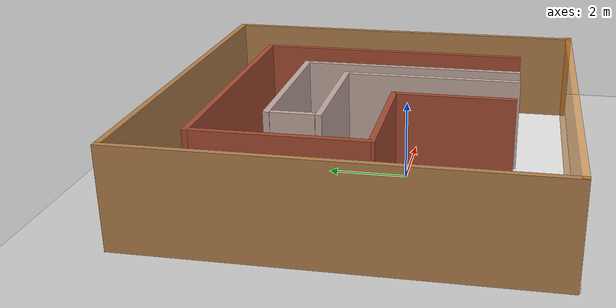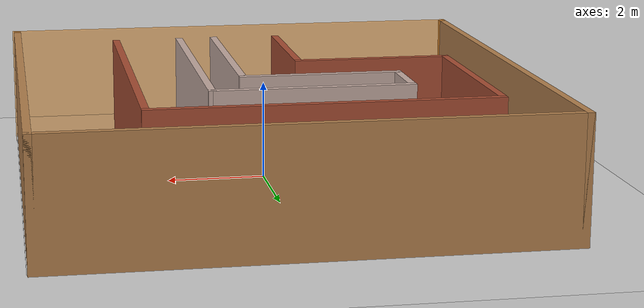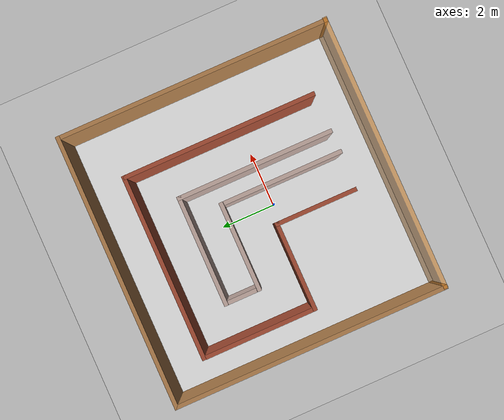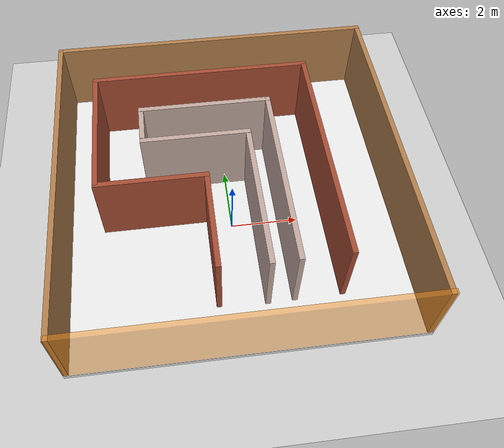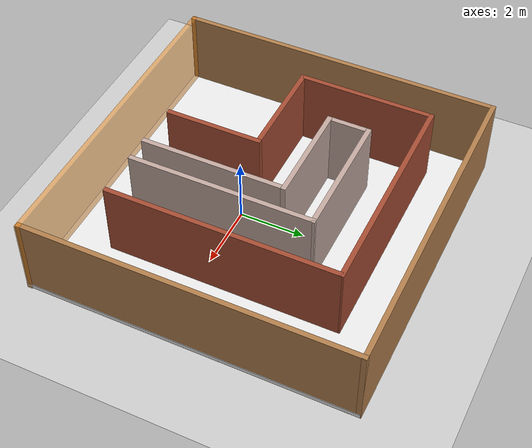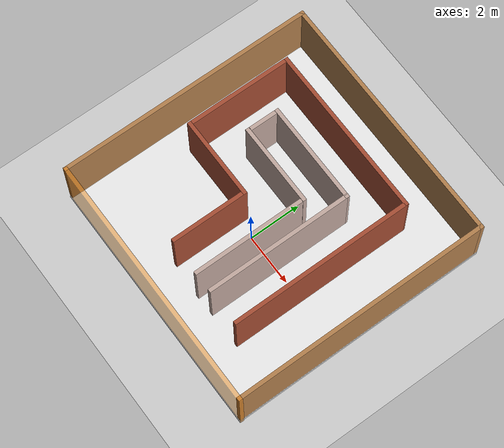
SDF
<sdf version="1.7">
 <world name="default">
  <light name="sun" type="directional">
   <pose>0 0 10 0 -0 0</pose>
   <diffuse>0.8 0.8 0.8 1</diffuse>
   <specular>0.2 0.2 0.2 1</specular>
   <attenuation>
    <range>1000</range>
    <constant>0.9</constant>
    <linear>0.01</linear>
    <quadratic>0.001</quadratic>
   </attenuation>
   <direction>-0.5 0.1 -0.9</direction>
   <spot><inner_angle>0</inner_angle><outer_angle>0</outer_angle><falloff>0</falloff></spot>
  </light>
  <model name="ground_plane">
   <static>1</static>
   <link name="link">
    <collision name="collision">
     <geometry><plane><normal>0 0 1</normal><size>100 100</size></plane></geometry>
     <surface>
      <contact><collide_bitmask>65535</collide_bitmask></contact>
      <friction><ode><mu>100</mu><mu2>50</mu2></ode></friction>
     </surface>
    </collision>
    <visual name="visual">
     <cast_shadows>0</cast_shadows>
     <geometry><plane><normal>0 0 1</normal><size>100 100</size></plane></geometry>
     <material>
      <script><uri>file://media/materials/scripts/gazebo.material</uri><name>Gazebo/Grey</name></script>
     </material>
    </visual>
   </link>
  </model>
  <gravity>0 0 -9.8</gravity>
  <magnetic_field>6e-06 2.3e-05 -4.2e-05</magnetic_field>
  <atmosphere type="adiabatic"/>
  <physics type="ode">
   <max_step_size>0.001</max_step_size>
   <real_time_factor>1</real_time_factor>
   <real_time_update_rate>1000</real_time_update_rate>
  </physics>
  <scene><ambient>0.4 0.4 0.4 1</ambient><background>0.7 0.7 0.7 1</background><shadows>1</shadows></scene>
  <spherical_coordinates>
   <surface_model>EARTH_WGS84</surface_model>
   <latitude_deg>0</latitude_deg>
   <longitude_deg>0</longitude_deg>
   <elevation>0</elevation>
   <heading_deg>0</heading_deg>
  </spherical_coordinates>
  <model name="delimiter_transparent">
   <model name="delimiter">
    <link name="Wall_11">
     <pose>0 4.925 0 0 -0 0</pose>
     <visual name="Wall_11_Visual">
      <pose>0 0 1.25 0 -0 0</pose>
      <geometry><box><size>10 0.15 2.5</size></box></geometry>
      <material>
       <script><uri>file://media/materials/scripts/gazebo.material</uri><name>Gazebo/Wood</name></script>
       <ambient>1 1 1 1</ambient>
       <shader type="pixel"/>
       <emissive>0 0 0 1</emissive>
      </material>
      <meta><layer>0</layer></meta>
     </visual>
     <collision name="Wall_11_Collision">
      <pose>0 0 1.25 0 -0 0</pose>
      <geometry><box><size>10 0.15 2.5</size></box></geometry>
      <surface>
       <friction>
        <ode><mu>1</mu><mu2>1</mu2><fdir1>0 0 0</fdir1><slip1>0</slip1><slip2>0</slip2></ode>
        <torsional>
         <coefficient>1</coefficient>
         <patch_radius>0</patch_radius>
         <surface_radius>0</surface_radius>
         <use_patch_radius>1</use_patch_radius>
         <ode><slip>0</slip></ode>
        </torsional>
       </friction>
       <bounce><restitution_coefficient>0</restitution_coefficient><threshold>1e+06</threshold></bounce>
       <contact>
        <collide_without_contact>0</collide_without_contact>
        <collide_without_contact_bitmask>1</collide_without_contact_bitmask>
        <collide_bitmask>1</collide_bitmask>
        <ode>
         <soft_cfm>0</soft_cfm>
         <soft_erp>0.2</soft_erp>
         <kp>1e+13</kp>
         <kd>1</kd>
         <max_vel>0.01</max_vel>
         <min_depth>0</min_depth>
        </ode>
        <bullet>
         <split_impulse>1</split_impulse>
         <split_impulse_penetration_threshold>-0.01</split_impulse_penetration_threshold>
         <soft_cfm>0</soft_cfm>
         <soft_erp>0.2</soft_erp>
         <kp>1e+13</kp>
         <kd>1</kd>
        </bullet>
       </contact>
      </surface>
     </collision>
    </link>
    <link name="Wall_6">
     <pose>-4.925 0 0 0 -0 1.5708</pose>
     <visual name="Wall_6_Visual">
      <pose>0 0 1.25 0 -0 0</pose>
      <geometry><box><size>10 0.15 2.5</size></box></geometry>
      <material>
       <script><uri>file://media/materials/scripts/gazebo.material</uri><name>Gazebo/Wood</name></script>
       <ambient>1 1 1 1</ambient>
       <shader type="pixel"/>
       <emissive>0 0 0 1</emissive>
      </material>
      <meta><layer>0</layer></meta>
     </visual>
     <collision name="Wall_6_Collision">
      <pose>0 0 1.25 0 -0 0</pose>
      <geometry><box><size>10 0.15 2.5</size></box></geometry>
      <surface>
       <friction>
        <ode><mu>1</mu><mu2>1</mu2><fdir1>0 0 0</fdir1><slip1>0</slip1><slip2>0</slip2></ode>
        <torsional>
         <coefficient>1</coefficient>
         <patch_radius>0</patch_radius>
         <surface_radius>0</surface_radius>
         <use_patch_radius>1</use_patch_radius>
         <ode><slip>0</slip></ode>
        </torsional>
       </friction>
       <bounce><restitution_coefficient>0</restitution_coefficient><threshold>1e+06</threshold></bounce>
       <contact>
        <collide_without_contact>0</collide_without_contact>
        <collide_without_contact_bitmask>1</collide_without_contact_bitmask>
        <collide_bitmask>1</collide_bitmask>
        <ode>
         <soft_cfm>0</soft_cfm>
         <soft_erp>0.2</soft_erp>
         <kp>1e+13</kp>
         <kd>1</kd>
         <max_vel>0.01</max_vel>
         <min_depth>0</min_depth>
        </ode>
        <bullet>
         <split_impulse>1</split_impulse>
         <split_impulse_penetration_threshold>-0.01</split_impulse_penetration_threshold>
         <soft_cfm>0</soft_cfm>
         <soft_erp>0.2</soft_erp>
         <kp>1e+13</kp>
         <kd>1</kd>
        </bullet>
       </contact>
      </surface>
     </collision>
    </link>
    <link name="Wall_9">
     <pose>4.925 0 0 0 -0 1.5708</pose>
     <visual name="Wall_9_Visual">
      <pose>0 0 1.25 0 -0 0</pose>
      <geometry><box><size>10 0.15 2.5</size></box></geometry>
      <material>
       <script><uri>file://media/materials/scripts/gazebo.material</uri><name>Gazebo/Wood</name></script>
       <ambient>1 1 1 1</ambient>
       <shader type="pixel"/>
       <emissive>0 0 0 1</emissive>
      </material>
      <meta><layer>0</layer></meta>
     </visual>
     <collision name="Wall_9_Collision">
      <pose>0 0 1.25 0 -0 0</pose>
      <geometry><box><size>10 0.15 2.5</size></box></geometry>
      <surface>
       <friction>
        <ode><mu>1</mu><mu2>1</mu2><fdir1>0 0 0</fdir1><slip1>0</slip1><slip2>0</slip2></ode>
        <torsional>
         <coefficient>1</coefficient>
         <patch_radius>0</patch_radius>
         <surface_radius>0</surface_radius>
         <use_patch_radius>1</use_patch_radius>
         <ode><slip>0</slip></ode>
        </torsional>
       </friction>
       <bounce><restitution_coefficient>0</restitution_coefficient><threshold>1e+06</threshold></bounce>
       <contact>
        <collide_without_contact>0</collide_without_contact>
        <collide_without_contact_bitmask>1</collide_without_contact_bitmask>
        <collide_bitmask>1</collide_bitmask>
        <ode>
         <soft_cfm>0</soft_cfm>
         <soft_erp>0.2</soft_erp>
         <kp>1e+13</kp>
         <kd>1</kd>
         <max_vel>0.01</max_vel>
         <min_depth>0</min_depth>
        </ode>
        <bullet>
         <split_impulse>1</split_impulse>
         <split_impulse_penetration_threshold>-0.01</split_impulse_penetration_threshold>
         <soft_cfm>0</soft_cfm>
         <soft_erp>0.2</soft_erp>
         <kp>1e+13</kp>
         <kd>1</kd>
        </bullet>
       </contact>
      </surface>
     </collision>
    </link>
    <link name="link_0">
     <inertial>
      <mass>0.118338</mass>
      <inertia><ixx>0.986289</ixx><ixy>0</ixy><ixz>0</ixz><iyy>0.986289</iyy><iyz>0</iyz><izz>1.9723</izz></inertia>
     </inertial>
     <pose>0.016005 -0.024248 0.089599 0 -0 0</pose>
     <visual name="visual">
      <geometry><box><size>10 10 0.118336</size></box></geometry>
      <material>
       <script><uri>file://media/materials/scripts/gazebo.material</uri><name>Gazebo/White</name></script>
       <ambient>1 1 1 1</ambient>
       <shader type="pixel"/>
       <emissive>0 0 0 1</emissive>
      </material>
     </visual>
     <collision name="collision">
      <geometry><box><size>10 10 0.118336</size></box></geometry>
      <surface>
       <friction>
        <ode><mu>1</mu><mu2>1</mu2><fdir1>0 0 0</fdir1><slip1>0</slip1><slip2>0</slip2></ode>
        <torsional>
         <coefficient>1</coefficient>
         <patch_radius>0</patch_radius>
         <surface_radius>0</surface_radius>
         <use_patch_radius>1</use_patch_radius>
         <ode><slip>0</slip></ode>
        </torsional>
       </friction>
       <bounce><restitution_coefficient>0</restitution_coefficient><threshold>1e+06</threshold></bounce>
       <contact>
        <collide_without_contact>0</collide_without_contact>
        <collide_without_contact_bitmask>1</collide_without_contact_bitmask>
        <collide_bitmask>1</collide_bitmask>
        <ode>
         <soft_cfm>0</soft_cfm>
         <soft_erp>0.2</soft_erp>
         <kp>1e+13</kp>
         <kd>1</kd>
         <max_vel>0.01</max_vel>
         <min_depth>0</min_depth>
        </ode>
        <bullet>
         <split_impulse>1</split_impulse>
         <split_impulse_penetration_threshold>-0.01</split_impulse_penetration_threshold>
         <soft_cfm>0</soft_cfm>
         <soft_erp>0.2</soft_erp>
         <kp>1e+13</kp>
         <kd>1</kd>
        </bullet>
       </contact>
      </surface>
     </collision>
    </link>
    <joint name="link_0_JOINT_2" type="fixed">
     <parent>link_0</parent>
     <child>Wall_6</child>
     <physics>
      <ode><limit><cfm>0</cfm><erp>0.2</erp></limit><suspension><cfm>0</cfm><erp>0.2</erp></suspension></ode>
     </physics>
    </joint>
    <joint name="link_0_JOINT_3" type="fixed">
     <parent>link_0</parent>
     <child>Wall_11</child>
     <physics>
      <ode><limit><cfm>0</cfm><erp>0.2</erp></limit><suspension><cfm>0</cfm><erp>0.2</erp></suspension></ode>
     </physics>
    </joint>
    <joint name="link_0_JOINT_4" type="fixed">
     <parent>link_0</parent>
     <child>Wall_9</child>
     <physics>
      <ode><limit><cfm>0</cfm><erp>0.2</erp></limit><suspension><cfm>0</cfm><erp>0.2</erp></suspension></ode>
     </physics>
    </joint>
    <static>1</static>
    <pose>0.081139 2.3494 0 0 -0 0</pose>
   </model>
   <model name="wall">
    <link name="link_0">
     <inertial>
      <mass>1</mass>
      <inertia>
       <ixx>0.166667</ixx>
       <ixy>0</ixy>
       <ixz>0</ixz>
       <iyy>0.166667</iyy>
       <iyz>0</iyz>
       <izz>0.166667</izz>
      </inertia>
     </inertial>
     <visual name="visual">
      <geometry><box><size>10 0.15 2.5</size></box></geometry>
      <material>
       <lighting>1</lighting>
       <script>
        <uri>file://media/materials/scripts/gazebo.material</uri>
        <name>Gazebo/OrangeTransparent</name>
       </script>
       <shader type="pixel"><normal_map>__default__</normal_map></shader>
      </material>
     </visual>
     <collision name="collision">
      <geometry><box><size>10 0.15 2.5</size></box></geometry>
      <surface>
       <friction>
        <ode><mu>1</mu><mu2>1</mu2><fdir1>0 0 0</fdir1><slip1>0</slip1><slip2>0</slip2></ode>
        <torsional>
         <coefficient>1</coefficient>
         <patch_radius>0</patch_radius>
         <surface_radius>0</surface_radius>
         <use_patch_radius>1</use_patch_radius>
         <ode><slip>0</slip></ode>
        </torsional>
       </friction>
       <bounce><restitution_coefficient>0</restitution_coefficient><threshold>1e+06</threshold></bounce>
       <contact>
        <collide_without_contact>0</collide_without_contact>
        <collide_without_contact_bitmask>1</collide_without_contact_bitmask>
        <collide_bitmask>1</collide_bitmask>
        <ode>
         <soft_cfm>0</soft_cfm>
         <soft_erp>0.2</soft_erp>
         <kp>1e+13</kp>
         <kd>1</kd>
         <max_vel>0.01</max_vel>
         <min_depth>0</min_depth>
        </ode>
        <bullet>
         <split_impulse>1</split_impulse>
         <split_impulse_penetration_threshold>-0.01</split_impulse_penetration_threshold>
         <soft_cfm>0</soft_cfm>
         <soft_erp>0.2</soft_erp>
         <kp>1e+13</kp>
         <kd>1</kd>
        </bullet>
       </contact>
      </surface>
     </collision>
    </link>
    <static>1</static>
    <pose>0.11227 -2.58314 1.26203 0 -0 0</pose>
   </model>
   <joint name="link_0_JOINT_1" type="fixed">
    <parent>delimiter::link_0</parent>
    <child>delimiter::Wall_11</child>
    <physics>
     <ode><limit><cfm>0</cfm><erp>0.2</erp></limit><suspension><cfm>0</cfm><erp>0.2</erp></suspension></ode>
    </physics>
   </joint>
   <joint name="link_0_JOINT_2" type="fixed">
    <parent>delimiter::link_0</parent>
    <child>delimiter::Wall_9</child>
    <physics>
     <ode><limit><cfm>0</cfm><erp>0.2</erp></limit><suspension><cfm>0</cfm><erp>0.2</erp></suspension></ode>
    </physics>
   </joint>
   <joint name="link_0_JOINT_0" type="fixed">
    <parent>wall::link_0</parent>
    <child>delimiter::link_0</child>
    <physics>
     <ode><limit><cfm>0</cfm><erp>0.2</erp></limit><suspension><cfm>0</cfm><erp>0.2</erp></suspension></ode>
    </physics>
   </joint>
   <joint name="link_0_JOINT_0" type="fixed">
    <parent>wall::link_0</parent>
    <child>delimiter::Wall_6</child>
    <physics>
     <ode><limit><cfm>0</cfm><erp>0.2</erp></limit><suspension><cfm>0</cfm><erp>0.2</erp></suspension></ode>
    </physics>
   </joint>
   <static>0</static>
   <pose>-0.064387 -1.47825 0 0 -0 0</pose>
  </model>
  <model name="maze">
   <link name="Wall_10">
    <pose>1.17845 -1.28104 0 0 0 -1.5708</pose>
    <inertial>
     <inertia><ixx>0</ixx><ixy>0</ixy><ixz>0</ixz><iyy>0</iyy><iyz>0</iyz><izz>0</izz></inertia>
     <mass>0</mass>
    </inertial>
    <visual name="Wall_10_Visual">
     <pose>0 0 1.25 0 -0 0</pose>
     <geometry><box><size>4.35036 0.15 2.5</size></box></geometry>
     <material>
      <script><uri>file://media/materials/scripts/gazebo.material</uri><name>Gazebo/Grey</name></script>
      <ambient>0.760784 0.662745 0.627451 1</ambient>
      <shader type="pixel"/>
     </material>
     <meta><layer>0</layer></meta>
    </visual>
    <collision name="Wall_10_Collision">
     <pose>0 0 1.25 0 -0 0</pose>
     <geometry><box><size>4.35036 0.15 2.5</size></box></geometry>
     <surface>
      <friction>
       <ode><mu>1</mu><mu2>1</mu2><fdir1>0 0 0</fdir1><slip1>0</slip1><slip2>0</slip2></ode>
       <torsional>
        <coefficient>1</coefficient>
        <patch_radius>0</patch_radius>
        <surface_radius>0</surface_radius>
        <use_patch_radius>1</use_patch_radius>
        <ode><slip>0</slip></ode>
       </torsional>
      </friction>
      <bounce><restitution_coefficient>0</restitution_coefficient><threshold>1e+06</threshold></bounce>
      <contact>
       <collide_without_contact>0</collide_without_contact>
       <collide_without_contact_bitmask>1</collide_without_contact_bitmask>
       <collide_bitmask>1</collide_bitmask>
       <ode>
        <soft_cfm>0</soft_cfm>
        <soft_erp>0.2</soft_erp>
        <kp>1e+13</kp>
        <kd>1</kd>
        <max_vel>0.01</max_vel>
        <min_depth>0</min_depth>
       </ode>
       <bullet>
        <split_impulse>1</split_impulse>
        <split_impulse_penetration_threshold>-0.01</split_impulse_penetration_threshold>
        <soft_cfm>0</soft_cfm>
        <soft_erp>0.2</soft_erp>
        <kp>1e+13</kp>
        <kd>1</kd>
       </bullet>
      </contact>
     </surface>
    </collision>
   </link>
   <link name="Wall_12">
    <pose>3.32538 0.102202 0 0 -0 1.5708</pose>
    <inertial>
     <inertia><ixx>0</ixx><ixy>0</ixy><ixz>0</ixz><iyy>0</iyy><iyz>0</iyz><izz>0</izz></inertia>
     <mass>0</mass>
    </inertial>
    <visual name="Wall_12_Visual">
     <pose>0 0 1.25 0 -0 0</pose>
     <geometry><box><size>7.04037 0.15 2.5</size></box></geometry>
     <material>
      <script><uri>file://media/materials/scripts/gazebo.material</uri><name>Gazebo/Bricks</name></script>
      <ambient>1 1 1 1</ambient>
      <shader type="pixel"/>
     </material>
     <meta><layer>0</layer></meta>
    </visual>
    <collision name="Wall_12_Collision">
     <pose>0 0 1.25 0 -0 0</pose>
     <geometry><box><size>7.04037 0.15 2.5</size></box></geometry>
     <surface>
      <friction>
       <ode><mu>1</mu><mu2>1</mu2><fdir1>0 0 0</fdir1><slip1>0</slip1><slip2>0</slip2></ode>
       <torsional>
        <coefficient>1</coefficient>
        <patch_radius>0</patch_radius>
        <surface_radius>0</surface_radius>
        <use_patch_radius>1</use_patch_radius>
        <ode><slip>0</slip></ode>
       </torsional>
      </friction>
      <bounce><restitution_coefficient>0</restitution_coefficient><threshold>1e+06</threshold></bounce>
      <contact>
       <collide_without_contact>0</collide_without_contact>
       <collide_without_contact_bitmask>1</collide_without_contact_bitmask>
       <collide_bitmask>1</collide_bitmask>
       <ode>
        <soft_cfm>0</soft_cfm>
        <soft_erp>0.2</soft_erp>
        <kp>1e+13</kp>
        <kd>1</kd>
        <max_vel>0.01</max_vel>
        <min_depth>0</min_depth>
       </ode>
       <bullet>
        <split_impulse>1</split_impulse>
        <split_impulse_penetration_threshold>-0.01</split_impulse_penetration_threshold>
        <soft_cfm>0</soft_cfm>
        <soft_erp>0.2</soft_erp>
        <kp>1e+13</kp>
        <kd>1</kd>
       </bullet>
      </contact>
     </surface>
    </collision>
   </link>
   <link name="Wall_13">
    <pose>0.022351 3.60006 0 0 -0 3.14156</pose>
    <inertial>
     <inertia><ixx>0</ixx><ixy>0</ixy><ixz>0</ixz><iyy>0</iyy><iyz>0</iyz><izz>0</izz></inertia>
     <mass>0</mass>
    </inertial>
    <visual name="Wall_13_Visual">
     <pose>0 0 1.25 0 -0 0</pose>
     <geometry><box><size>6.75158 0.15 2.5</size></box></geometry>
     <material>
      <script><uri>file://media/materials/scripts/gazebo.material</uri><name>Gazebo/Bricks</name></script>
      <ambient>1 1 1 1</ambient>
      <shader type="pixel"/>
     </material>
     <meta><layer>0</layer></meta>
    </visual>
    <collision name="Wall_13_Collision">
     <pose>0 0 1.25 0 -0 0</pose>
     <geometry><box><size>6.75158 0.15 2.5</size></box></geometry>
     <surface>
      <friction>
       <ode><mu>1</mu><mu2>1</mu2><fdir1>0 0 0</fdir1><slip1>0</slip1><slip2>0</slip2></ode>
       <torsional>
        <coefficient>1</coefficient>
        <patch_radius>0</patch_radius>
        <surface_radius>0</surface_radius>
        <use_patch_radius>1</use_patch_radius>
        <ode><slip>0</slip></ode>
       </torsional>
      </friction>
      <bounce><restitution_coefficient>0</restitution_coefficient><threshold>1e+06</threshold></bounce>
      <contact>
       <collide_without_contact>0</collide_without_contact>
       <collide_without_contact_bitmask>1</collide_without_contact_bitmask>
       <collide_bitmask>1</collide_bitmask>
       <ode>
        <soft_cfm>0</soft_cfm>
        <soft_erp>0.2</soft_erp>
        <kp>1e+13</kp>
        <kd>1</kd>
        <max_vel>0.01</max_vel>
        <min_depth>0</min_depth>
       </ode>
       <bullet>
        <split_impulse>1</split_impulse>
        <split_impulse_penetration_threshold>-0.01</split_impulse_penetration_threshold>
        <soft_cfm>0</soft_cfm>
        <soft_erp>0.2</soft_erp>
        <kp>1e+13</kp>
        <kd>1</kd>
       </bullet>
      </contact>
     </surface>
    </collision>
   </link>
   <link name="Wall_14">
    <pose>-3.2867 1.5347 0 0 0 -1.5708</pose>
    <visual name="Wall_14_Visual">
     <pose>0 0 1.25 0 -0 0</pose>
     <geometry><box><size>4 0.15 2.5</size></box></geometry>
     <material>
      <script><uri>file://media/materials/scripts/gazebo.material</uri><name>Gazebo/Bricks</name></script>
      <ambient>1 1 1 1</ambient>
      <shader type="pixel"/>
     </material>
     <meta><layer>0</layer></meta>
    </visual>
    <collision name="Wall_14_Collision">
     <pose>0 0 1.25 0 -0 0</pose>
     <geometry><box><size>4 0.15 2.5</size></box></geometry>
     <surface>
      <friction>
       <ode><mu>1</mu><mu2>1</mu2><fdir1>0 0 0</fdir1><slip1>0</slip1><slip2>0</slip2></ode>
       <torsional>
        <coefficient>1</coefficient>
        <patch_radius>0</patch_radius>
        <surface_radius>0</surface_radius>
        <use_patch_radius>1</use_patch_radius>
        <ode><slip>0</slip></ode>
       </torsional>
      </friction>
      <bounce><restitution_coefficient>0</restitution_coefficient><threshold>1e+06</threshold></bounce>
      <contact>
       <collide_without_contact>0</collide_without_contact>
       <collide_without_contact_bitmask>1</collide_without_contact_bitmask>
       <collide_bitmask>1</collide_bitmask>
       <ode>
        <soft_cfm>0</soft_cfm>
        <soft_erp>0.2</soft_erp>
        <kp>1e+13</kp>
        <kd>1</kd>
        <max_vel>0.01</max_vel>
        <min_depth>0</min_depth>
       </ode>
       <bullet>
        <split_impulse>1</split_impulse>
        <split_impulse_penetration_threshold>-0.01</split_impulse_penetration_threshold>
        <soft_cfm>0</soft_cfm>
        <soft_erp>0.2</soft_erp>
        <kp>1e+13</kp>
        <kd>1</kd>
       </bullet>
      </contact>
     </surface>
    </collision>
   </link>
   <link name="Wall_15">
    <pose>-1.7367 -0.464901 0 0 -0 0</pose>
    <visual name="Wall_15_Visual">
     <pose>0 0 1.25 0 -0 0</pose>
     <geometry><box><size>3.25 0.15 2.5</size></box></geometry>
     <material>
      <script><uri>file://media/materials/scripts/gazebo.material</uri><name>Gazebo/Bricks</name></script>
      <ambient>1 1 1 1</ambient>
      <shader type="pixel"/>
     </material>
     <meta><layer>0</layer></meta>
    </visual>
    <collision name="Wall_15_Collision">
     <pose>0 0 1.25 0 -0 0</pose>
     <geometry><box><size>3.25 0.15 2.5</size></box></geometry>
     <surface>
      <friction>
       <ode><mu>1</mu><mu2>1</mu2><fdir1>0 0 0</fdir1><slip1>0</slip1><slip2>0</slip2></ode>
       <torsional>
        <coefficient>1</coefficient>
        <patch_radius>0</patch_radius>
        <surface_radius>0</surface_radius>
        <use_patch_radius>1</use_patch_radius>
        <ode><slip>0</slip></ode>
       </torsional>
      </friction>
      <bounce><restitution_coefficient>0</restitution_coefficient><threshold>1e+06</threshold></bounce>
      <contact>
       <collide_without_contact>0</collide_without_contact>
       <collide_without_contact_bitmask>1</collide_without_contact_bitmask>
       <collide_bitmask>1</collide_bitmask>
       <ode>
        <soft_cfm>0</soft_cfm>
        <soft_erp>0.2</soft_erp>
        <kp>1e+13</kp>
        <kd>1</kd>
        <max_vel>0.01</max_vel>
        <min_depth>0</min_depth>
       </ode>
       <bullet>
        <split_impulse>1</split_impulse>
        <split_impulse_penetration_threshold>-0.01</split_impulse_penetration_threshold>
        <soft_cfm>0</soft_cfm>
        <soft_erp>0.2</soft_erp>
        <kp>1e+13</kp>
        <kd>1</kd>
       </bullet>
      </contact>
     </surface>
    </collision>
   </link>
   <link name="Wall_16">
    <pose>-0.1867 -1.8899 0 0 0 -1.5708</pose>
    <visual name="Wall_16_Visual">
     <pose>0 0 1.25 0 -0 0</pose>
     <geometry><box><size>3 0.15 2.5</size></box></geometry>
     <material>
      <script><uri>file://media/materials/scripts/gazebo.material</uri><name>Gazebo/Bricks</name></script>
      <ambient>1 1 1 1</ambient>
      <shader type="pixel"/>
     </material>
     <meta><layer>0</layer></meta>
    </visual>
    <collision name="Wall_16_Collision">
     <pose>0 0 1.25 0 -0 0</pose>
     <geometry><box><size>3 0.15 2.5</size></box></geometry>
     <surface>
      <friction>
       <ode><mu>1</mu><mu2>1</mu2><fdir1>0 0 0</fdir1><slip1>0</slip1><slip2>0</slip2></ode>
       <torsional>
        <coefficient>1</coefficient>
        <patch_radius>0</patch_radius>
        <surface_radius>0</surface_radius>
        <use_patch_radius>1</use_patch_radius>
        <ode><slip>0</slip></ode>
       </torsional>
      </friction>
      <bounce><restitution_coefficient>0</restitution_coefficient><threshold>1e+06</threshold></bounce>
      <contact>
       <collide_without_contact>0</collide_without_contact>
       <collide_without_contact_bitmask>1</collide_without_contact_bitmask>
       <collide_bitmask>1</collide_bitmask>
       <ode>
        <soft_cfm>0</soft_cfm>
        <soft_erp>0.2</soft_erp>
        <kp>1e+13</kp>
        <kd>1</kd>
        <max_vel>0.01</max_vel>
        <min_depth>0</min_depth>
       </ode>
       <bullet>
        <split_impulse>1</split_impulse>
        <split_impulse_penetration_threshold>-0.01</split_impulse_penetration_threshold>
        <soft_cfm>0</soft_cfm>
        <soft_erp>0.2</soft_erp>
        <kp>1e+13</kp>
        <kd>1</kd>
       </bullet>
      </contact>
     </surface>
    </collision>
   </link>
   <link name="Wall_5">
    <pose>1.94358 -0.586043 0 0 -0 1.5708</pose>
    <visual name="Wall_5_Visual">
     <pose>0 0 1.25 0 -0 0</pose>
     <geometry><box><size>5.7 0.15 2.5</size></box></geometry>
     <material>
      <script><uri>file://media/materials/scripts/gazebo.material</uri><name>Gazebo/Grey</name></script>
      <ambient>0.760784 0.662745 0.627451 1</ambient>
      <shader type="pixel"/>
     </material>
     <meta><layer>0</layer></meta>
    </visual>
    <collision name="Wall_5_Collision">
     <pose>0 0 1.25 0 -0 0</pose>
     <geometry><box><size>5.7 0.15 2.5</size></box></geometry>
     <surface>
      <friction>
       <ode><mu>1</mu><mu2>1</mu2><fdir1>0 0 0</fdir1><slip1>0</slip1><slip2>0</slip2></ode>
       <torsional>
        <coefficient>1</coefficient>
        <patch_radius>0</patch_radius>
        <surface_radius>0</surface_radius>
        <use_patch_radius>1</use_patch_radius>
        <ode><slip>0</slip></ode>
       </torsional>
      </friction>
      <bounce><restitution_coefficient>0</restitution_coefficient><threshold>1e+06</threshold></bounce>
      <contact>
       <collide_without_contact>0</collide_without_contact>
       <collide_without_contact_bitmask>1</collide_without_contact_bitmask>
       <collide_bitmask>1</collide_bitmask>
       <ode>
        <soft_cfm>0</soft_cfm>
        <soft_erp>0.2</soft_erp>
        <kp>1e+13</kp>
        <kd>1</kd>
        <max_vel>0.01</max_vel>
        <min_depth>0</min_depth>
       </ode>
       <bullet>
        <split_impulse>1</split_impulse>
        <split_impulse_penetration_threshold>-0.01</split_impulse_penetration_threshold>
        <soft_cfm>0</soft_cfm>
        <soft_erp>0.2</soft_erp>
        <kp>1e+13</kp>
        <kd>1</kd>
       </bullet>
      </contact>
     </surface>
    </collision>
   </link>
   <link name="Wall_7">
    <pose>0.011015 2.19127 0 0 -0 3.14039</pose>
    <visual name="Wall_7_Visual">
     <pose>0 0 1.25 0 -0 0</pose>
     <geometry><box><size>4.01513 0.15 2.5</size></box></geometry>
     <material>
      <script><uri>file://media/materials/scripts/gazebo.material</uri><name>Gazebo/Grey</name></script>
      <ambient>0.760784 0.662745 0.627451 1</ambient>
      <shader type="pixel"/>
     </material>
     <meta><layer>0</layer></meta>
    </visual>
    <collision name="Wall_7_Collision">
     <pose>0 0 1.25 0 -0 0</pose>
     <geometry><box><size>4.01513 0.15 2.5</size></box></geometry>
     <surface>
      <friction>
       <ode><mu>1</mu><mu2>1</mu2><fdir1>0 0 0</fdir1><slip1>0</slip1><slip2>0</slip2></ode>
       <torsional>
        <coefficient>1</coefficient>
        <patch_radius>0</patch_radius>
        <surface_radius>0</surface_radius>
        <use_patch_radius>1</use_patch_radius>
        <ode><slip>0</slip></ode>
       </torsional>
      </friction>
      <bounce><restitution_coefficient>0</restitution_coefficient><threshold>1e+06</threshold></bounce>
      <contact>
       <collide_without_contact>0</collide_without_contact>
       <collide_without_contact_bitmask>1</collide_without_contact_bitmask>
       <collide_bitmask>1</collide_bitmask>
       <ode>
        <soft_cfm>0</soft_cfm>
        <soft_erp>0.2</soft_erp>
        <kp>1e+13</kp>
        <kd>1</kd>
        <max_vel>0.01</max_vel>
        <min_depth>0</min_depth>
       </ode>
       <bullet>
        <split_impulse>1</split_impulse>
        <split_impulse_penetration_threshold>-0.01</split_impulse_penetration_threshold>
        <soft_cfm>0</soft_cfm>
        <soft_erp>0.2</soft_erp>
        <kp>1e+13</kp>
        <kd>1</kd>
       </bullet>
      </contact>
     </surface>
    </collision>
   </link>
   <link name="Wall_8">
    <pose>-1.92155 1.58507 0 0 0 -1.5708</pose>
    <inertial>
     <inertia><ixx>0</ixx><ixy>0</ixy><ixz>0</ixz><iyy>0</iyy><iyz>0</iyz><izz>0</izz></inertia>
     <mass>0</mass>
    </inertial>
    <visual name="Wall_8_Visual">
     <pose>0 0 1.25 0 -0 0</pose>
     <geometry><box><size>1.05585 0.15 2.5</size></box></geometry>
     <material>
      <script><uri>file://media/materials/scripts/gazebo.material</uri><name>Gazebo/Grey</name></script>
      <ambient>0.760784 0.662745 0.627451 1</ambient>
      <shader type="pixel"/>
     </material>
     <meta><layer>0</layer></meta>
    </visual>
    <collision name="Wall_8_Collision">
     <pose>0 0 1.25 0 -0 0</pose>
     <geometry><box><size>1.05585 0.15 2.5</size></box></geometry>
     <surface>
      <friction>
       <ode><mu>1</mu><mu2>1</mu2><fdir1>0 0 0</fdir1><slip1>0</slip1><slip2>0</slip2></ode>
       <torsional>
        <coefficient>1</coefficient>
        <patch_radius>0</patch_radius>
        <surface_radius>0</surface_radius>
        <use_patch_radius>1</use_patch_radius>
        <ode><slip>0</slip></ode>
       </torsional>
      </friction>
      <bounce><restitution_coefficient>0</restitution_coefficient><threshold>1e+06</threshold></bounce>
      <contact>
       <collide_without_contact>0</collide_without_contact>
       <collide_without_contact_bitmask>1</collide_without_contact_bitmask>
       <collide_bitmask>1</collide_bitmask>
       <ode>
        <soft_cfm>0</soft_cfm>
        <soft_erp>0.2</soft_erp>
        <kp>1e+13</kp>
        <kd>1</kd>
        <max_vel>0.01</max_vel>
        <min_depth>0</min_depth>
       </ode>
       <bullet>
        <split_impulse>1</split_impulse>
        <split_impulse_penetration_threshold>-0.01</split_impulse_penetration_threshold>
        <soft_cfm>0</soft_cfm>
        <soft_erp>0.2</soft_erp>
        <kp>1e+13</kp>
        <kd>1</kd>
       </bullet>
      </contact>
     </surface>
    </collision>
   </link>
   <link name="Wall_9">
    <pose>-0.371547 0.975009 0 0 -0 0</pose>
    <visual name="Wall_9_Visual">
     <pose>0 0 1.25 0 -0 0</pose>
     <geometry><box><size>3.25 0.15 2.5</size></box></geometry>
     <material>
      <script><uri>file://media/materials/scripts/gazebo.material</uri><name>Gazebo/Grey</name></script>
      <ambient>0.760784 0.662745 0.627451 1</ambient>
      <shader type="pixel"/>
     </material>
     <meta><layer>0</layer></meta>
    </visual>
    <collision name="Wall_9_Collision">
     <pose>0 0 1.25 0 -0 0</pose>
     <geometry><box><size>3.25 0.15 2.5</size></box></geometry>
     <surface>
      <friction>
       <ode><mu>1</mu><mu2>1</mu2><fdir1>0 0 0</fdir1><slip1>0</slip1><slip2>0</slip2></ode>
       <torsional>
        <coefficient>1</coefficient>
        <patch_radius>0</patch_radius>
        <surface_radius>0</surface_radius>
        <use_patch_radius>1</use_patch_radius>
        <ode><slip>0</slip></ode>
       </torsional>
      </friction>
      <bounce><restitution_coefficient>0</restitution_coefficient><threshold>1e+06</threshold></bounce>
      <contact>
       <collide_without_contact>0</collide_without_contact>
       <collide_without_contact_bitmask>1</collide_without_contact_bitmask>
       <collide_bitmask>1</collide_bitmask>
       <ode>
        <soft_cfm>0</soft_cfm>
        <soft_erp>0.2</soft_erp>
        <kp>1e+13</kp>
        <kd>1</kd>
        <max_vel>0.01</max_vel>
        <min_depth>0</min_depth>
       </ode>
       <bullet>
        <split_impulse>1</split_impulse>
        <split_impulse_penetration_threshold>-0.01</split_impulse_penetration_threshold>
        <soft_cfm>0</soft_cfm>
        <soft_erp>0.2</soft_erp>
        <kp>1e+13</kp>
        <kd>1</kd>
       </bullet>
      </contact>
     </surface>
    </collision>
   </link>
   <static>1</static>
   <pose>-0.499128 0.700494 0 0 -0 0</pose>
  </model>
 </world>
</sdf>
